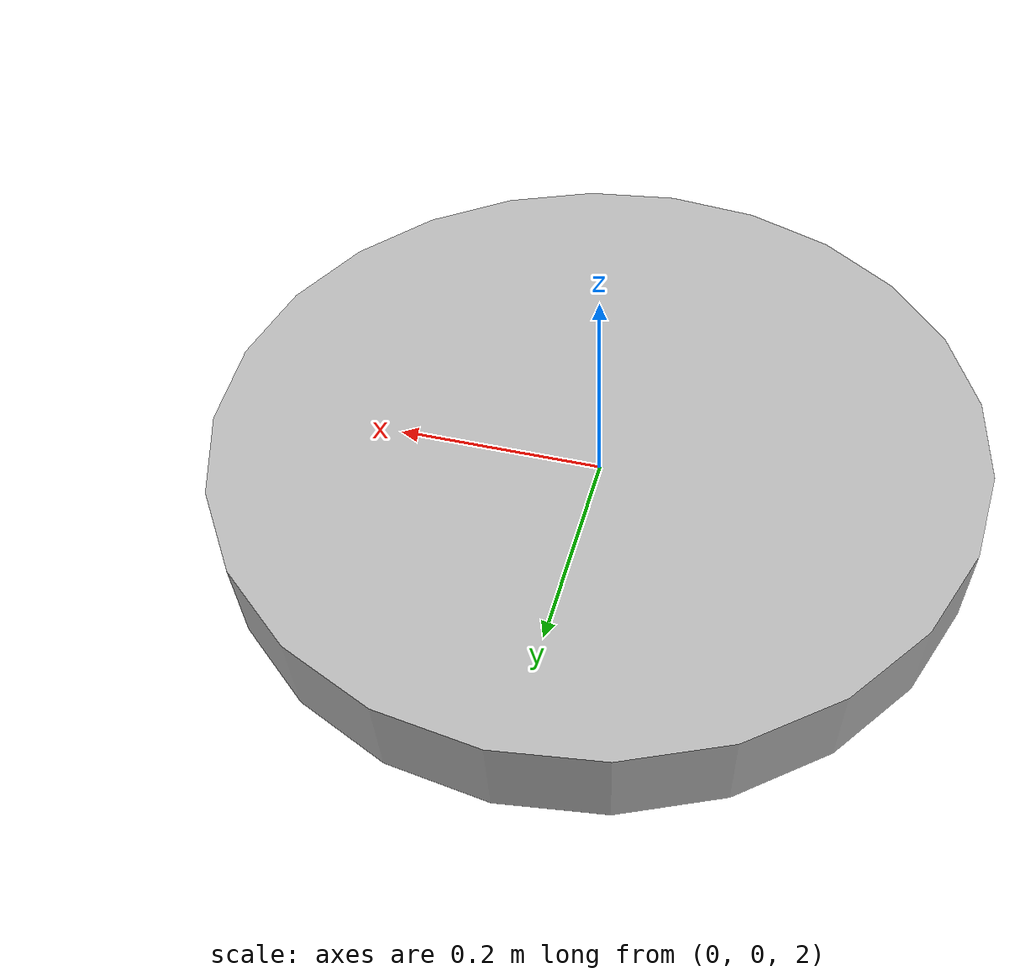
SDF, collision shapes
<?xml version="1.0"?>
<sdf version="1.4">
  <model name="pelican">

    <static>true</static>
    <pose>0 0 2  0 0 0</pose>

    <!-- Platform frame + sensors //-->
    <link name="platform">
      <pose>0 0 0  0 0 0</pose>
      <gravity>false</gravity>
      <collision name="collision">
        <pose>0 0 0.035 0 0 0</pose>
        <geometry>
          <cylinder>
            <radius>.35</radius>
            <length>.08</length>
          </cylinder>
        </geometry>
      </collision>
      <visual name="frame">
        <pose>0 0 0 0 0 0</pose>
        <geometry>
          <mesh><uri>model://platform_pelican/meshes/pelican.dae</uri></mesh>
        </geometry>
      </visual>
      <sensor name="camera" type="camera">
        <always_on>0</always_on>
        <update_rate>30</update_rate>
        <visualize>true</visualize>
        <pose>0 0 0 0 1.570 0</pose>
        <camera>
          <horizontal_fov>1.047</horizontal_fov>
          <pose>0 0 0 0 3.141 0</pose>
          <image>
            <width>1024</width>
            <height>768</height>
          </image>
          <clip>
            <near>0.1</near>
            <far>100</far>
          </clip>
          <noise>
            <type>gaussian</type>
            <mean>0.0</mean>
            <stddev>0.007</stddev>
          </noise>
        </camera>
      </sensor>
      <sensor name="imu" type="imu">
        <always_on>0</always_on>
        <update_rate>512</update_rate>
        <visualize>false</visualize>
        <imu>
          <noise>
            <type>gaussian</type>
            <rate>
              <mean>0.0</mean>
              <stddev>2e-4</stddev>
              <bias_mean>0.0000075</bias_mean>
              <bias_stddev>0.0000008</bias_stddev>
            </rate>
            <accel>
              <mean>0.0</mean>
              <stddev>1.7e-2</stddev>
              <bias_mean>0.1</bias_mean>
              <bias_stddev>0.001</bias_stddev>
            </accel>
          </noise>
        </imu>
      </sensor>
    </link>

    <!-- These are the four blades //-->
    <link name="blade_left">
     <pose>-0.241 0.0 0.05 0 0 0</pose>
      <gravity>false</gravity>
      <collision name="blade_left_collision">
        <pose>0 0 0 0 0 0</pose>
        <geometry>
          <cylinder>
            <radius>.10</radius>
            <length>.02</length>
          </cylinder>
        </geometry>
      </collision>
      <visual name="blade_left_visual">
        <pose>0 0 0 0 0 0</pose>
        <geometry>
          <mesh><uri>model://platform_pelican/meshes/blade.dae</uri></mesh>
        </geometry>
      </visual>
    </link>
    <link name="blade_right">
     <pose>0.241 0.0 0.05 0 0 0</pose>
      <gravity>false</gravity>
      <collision name="blade_left_collision">
        <pose>0 0 0 0 0 0</pose>
        <geometry>
          <cylinder>
            <radius>.10</radius>
            <length>.02</length>
          </cylinder>
        </geometry>
      </collision>
      <visual name="blade_right_visual">
        <pose>0 0 0 0 0 0</pose>
        <geometry>
          <mesh><uri>model://platform_pelican/meshes/blade.dae</uri></mesh>
        </geometry>
      </visual>
    </link>
    <link name="blade_top">
     <pose>0.0 0.241 0.05 0 0 0</pose>
      <gravity>false</gravity>
      <collision name="blade_left_collision">
        <pose>0 0 0 0 0 0</pose>
        <geometry>
          <cylinder>
            <radius>.10</radius>
            <length>.02</length>
          </cylinder>
        </geometry>
      </collision>
      <visual name="blade_top_visual">
        <pose>0 0 0 0 0 0</pose>
        <geometry>
          <mesh><uri>model://platform_pelican/meshes/blade.dae</uri></mesh>
        </geometry>
      </visual>
    </link>
    <link name="blade_bottom">
     <pose>0 -0.241 0.05 0 0 0</pose>
      <gravity>false</gravity>
      <collision name="blade_bottom_collision">
        <pose>0 0 0 0 0 0</pose>
        <geometry>
          <cylinder>
            <radius>.10</radius>
            <length>.02</length>
          </cylinder>
        </geometry>
      </collision>
      <visual name="blade_bottom_visual">
        <pose>0 0 0 0 0 0</pose>
        <geometry>
          <mesh><uri>model://platform_pelican/meshes/blade.dae</uri></mesh>
        </geometry>
      </visual>
    </link>

    <!-- These joints allow animated blades //-->
    <joint type="revolute" name="blade_left_motor">
      <pose>0 0 0 0 0 0</pose>
      <child>blade_left</child>
      <parent>platform</parent>
      <axis>
        <xyz>0 0 1</xyz>
      </axis>
    </joint>
    <joint type="revolute" name="blade_right_motor">
      <pose>0 0 0 0 0 0</pose>
      <child>blade_right</child>
      <parent>platform</parent>
      <axis>
        <xyz>0 0 1</xyz>
      </axis>
    </joint>
    <joint type="revolute" name="blade_top_motor">
      <pose>0 0 0 0 0 0</pose>
      <child>blade_top</child>
      <parent>platform</parent>
      <axis>
        <xyz>0 0 1</xyz>
      </axis>
    </joint>
    <joint type="revolute" name="blade_bottom_motor">
      <pose>0 0 0 0 0 0</pose>
      <child>blade_bottom</child>
      <parent>platform</parent>
      <axis>
        <xyz>0 0 1</xyz>
      </axis>
    </joint>

    <!-- This plugin provides the dynamics //-->
    <plugin name="dynamics_genetic" filename="libdynamics_genetic.so" />

  </model>

</sdf>
